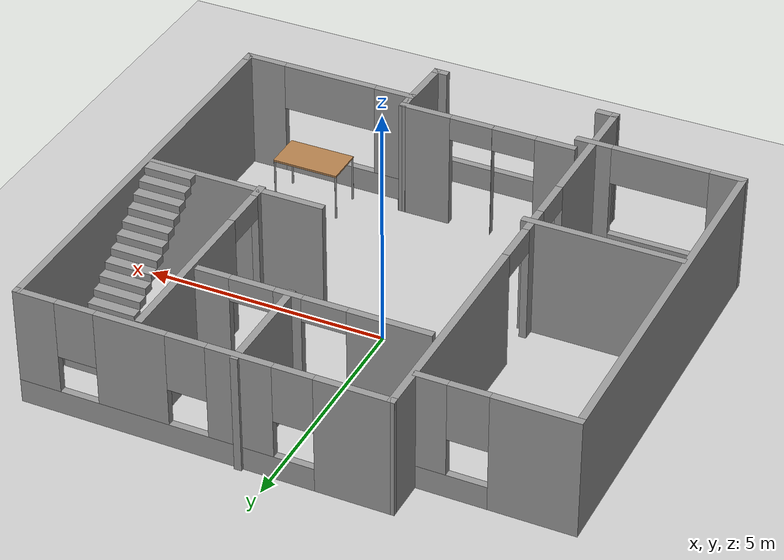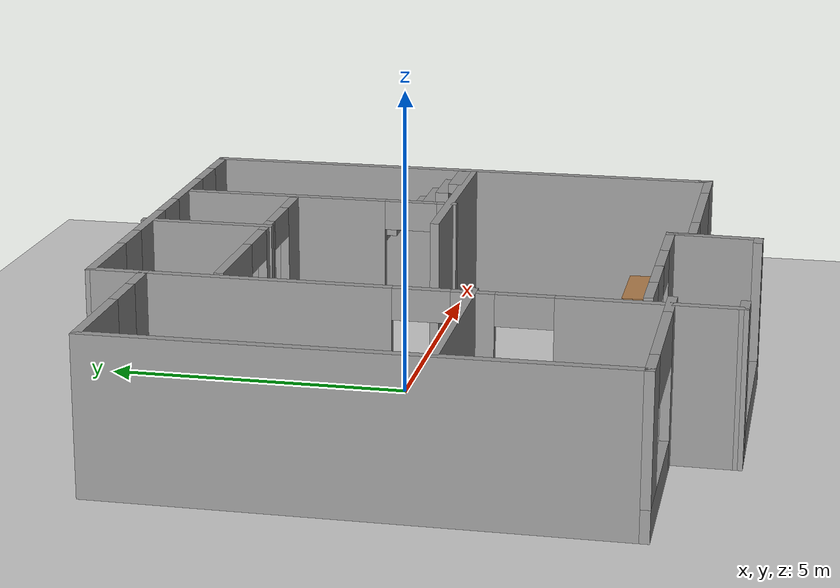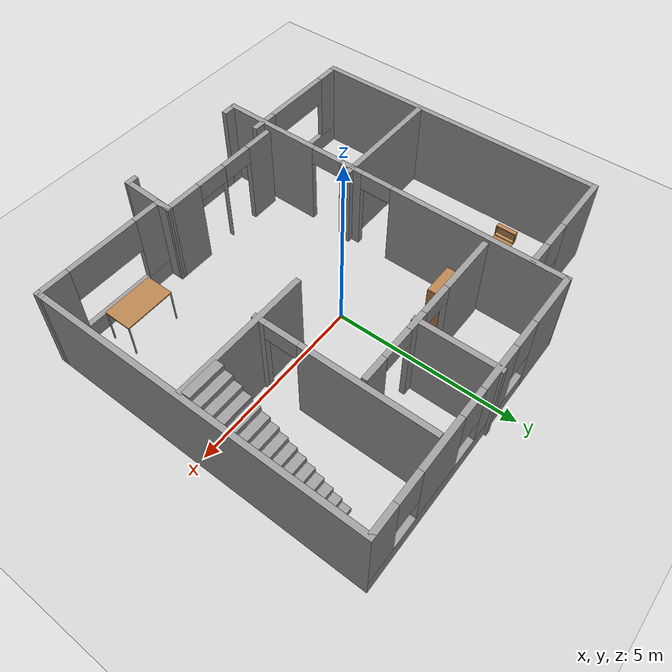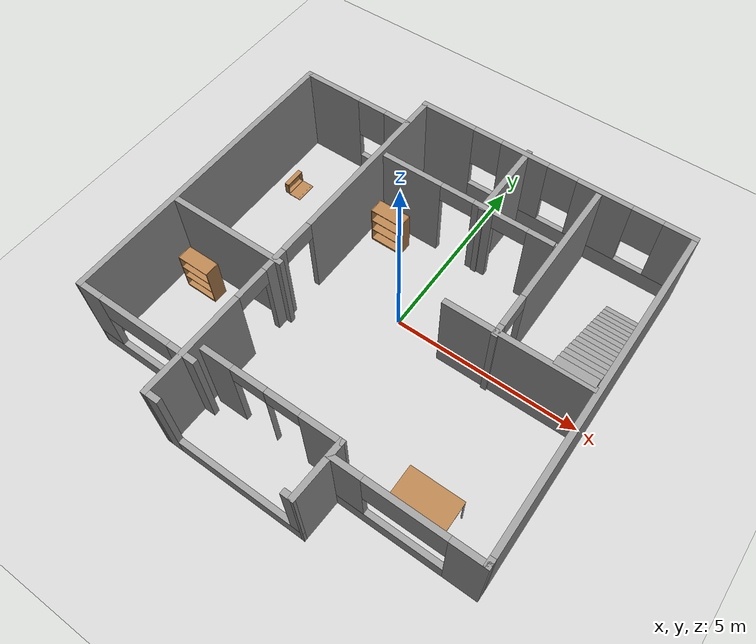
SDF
<sdf version="1.6">
 <world name="default">
  <light name="sun" type="directional">
   <pose>0 0 10 0 -0 0</pose>
   <diffuse>0.8 0.8 0.8 1</diffuse>
   <specular>0.1 0.1 0.1 1</specular>
   <attenuation>
    <range>1000</range>
    <constant>0.9</constant>
    <linear>0.01</linear>
    <quadratic>0.001</quadratic>
   </attenuation>
   <direction>-0.5 0.5 -1</direction>
  </light>
  <model name="ground_plane">
   <static>1</static>
   <link name="link">
    <collision name="collision">
     <geometry><plane><normal>0 0 1</normal><size>100 100</size></plane></geometry>
     <surface><friction><ode><mu>100</mu><mu2>50</mu2></ode></friction></surface>
    </collision>
    <visual name="visual">
     <cast_shadows>0</cast_shadows>
     <geometry><plane><normal>0 0 1</normal><size>100 100</size></plane></geometry>
     <material>
      <script><uri>file://media/materials/scripts/gazebo.material</uri><name>Gazebo/Grey</name></script>
     </material>
    </visual>
   </link>
  </model>
  <gravity>0 0 -9.8</gravity>
  <magnetic_field>6e-06 2.3e-05 -4.2e-05</magnetic_field>
  <atmosphere type="adiabatic"/>
  <physics name="default_physics" default="0" type="ode">
   <max_step_size>0.001</max_step_size>
   <real_time_factor>1</real_time_factor>
   <real_time_update_rate>1000</real_time_update_rate>
  </physics>
  <scene><ambient>0.4 0.4 0.4 1</ambient><background>0.7 0.7 0.7 1</background><shadows>1</shadows></scene>
  <spherical_coordinates>
   <surface_model>EARTH_WGS84</surface_model>
   <latitude_deg>0</latitude_deg>
   <longitude_deg>0</longitude_deg>
   <elevation>0</elevation>
   <heading_deg>0</heading_deg>
  </spherical_coordinates>
  <model name="cad">
   <pose>-0.17175 -0.496482 0 0 -0 0</pose>
   <link name="Stairs_0">
    <visual name="Stairs_0_Visual_0">
     <pose>4.68461 3.68435 0.083333 0 -0 0</pose>
     <geometry><box><size>1 0.233333 0.166667</size></box></geometry>
     <material>
      <script><uri>file://media/materials/scripts/gazebo.material</uri><name>Gazebo/Grey</name></script>
      <ambient>1 1 1 1</ambient>
     </material>
    </visual>
    <collision name="Stairs_0_Collision_0">
     <geometry><box><size>1 0.233333 0.166667</size></box></geometry>
     <pose>4.68461 3.68435 0.083333 0 -0 0</pose>
    </collision>
    <visual name="Stairs_0_Visual_1">
     <pose>4.68461 3.45102 0.25 0 -0 0</pose>
     <geometry><box><size>1 0.233333 0.166667</size></box></geometry>
     <material>
      <script><uri>file://media/materials/scripts/gazebo.material</uri><name>Gazebo/Grey</name></script>
      <ambient>1 1 1 1</ambient>
     </material>
    </visual>
    <collision name="Stairs_0_Collision_1">
     <geometry><box><size>1 0.233333 0.166667</size></box></geometry>
     <pose>4.68461 3.45102 0.25 0 -0 0</pose>
    </collision>
    <visual name="Stairs_0_Visual_2">
     <pose>4.68461 3.21769 0.416667 0 -0 0</pose>
     <geometry><box><size>1 0.233333 0.166667</size></box></geometry>
     <material>
      <script><uri>file://media/materials/scripts/gazebo.material</uri><name>Gazebo/Grey</name></script>
      <ambient>1 1 1 1</ambient>
     </material>
    </visual>
    <collision name="Stairs_0_Collision_2">
     <geometry><box><size>1 0.233333 0.166667</size></box></geometry>
     <pose>4.68461 3.21769 0.416667 0 -0 0</pose>
    </collision>
    <visual name="Stairs_0_Visual_3">
     <pose>4.68461 2.98435 0.583333 0 -0 0</pose>
     <geometry><box><size>1 0.233333 0.166667</size></box></geometry>
     <material>
      <script><uri>file://media/materials/scripts/gazebo.material</uri><name>Gazebo/Grey</name></script>
      <ambient>1 1 1 1</ambient>
     </material>
    </visual>
    <collision name="Stairs_0_Collision_3">
     <geometry><box><size>1 0.233333 0.166667</size></box></geometry>
     <pose>4.68461 2.98435 0.583333 0 -0 0</pose>
    </collision>
    <visual name="Stairs_0_Visual_4">
     <pose>4.68461 2.75102 0.75 0 -0 0</pose>
     <geometry><box><size>1 0.233333 0.166667</size></box></geometry>
     <material>
      <script><uri>file://media/materials/scripts/gazebo.material</uri><name>Gazebo/Grey</name></script>
      <ambient>1 1 1 1</ambient>
     </material>
    </visual>
    <collision name="Stairs_0_Collision_4">
     <geometry><box><size>1 0.233333 0.166667</size></box></geometry>
     <pose>4.68461 2.75102 0.75 0 -0 0</pose>
    </collision>
    <visual name="Stairs_0_Visual_5">
     <pose>4.68461 2.51769 0.916667 0 -0 0</pose>
     <geometry><box><size>1 0.233333 0.166667</size></box></geometry>
     <material>
      <script><uri>file://media/materials/scripts/gazebo.material</uri><name>Gazebo/Grey</name></script>
      <ambient>1 1 1 1</ambient>
     </material>
    </visual>
    <collision name="Stairs_0_Collision_5">
     <geometry><box><size>1 0.233333 0.166667</size></box></geometry>
     <pose>4.68461 2.51769 0.916667 0 -0 0</pose>
    </collision>
    <visual name="Stairs_0_Visual_6">
     <pose>4.68461 2.28435 1.08333 0 -0 0</pose>
     <geometry><box><size>1 0.233333 0.166667</size></box></geometry>
     <material>
      <script><uri>file://media/materials/scripts/gazebo.material</uri><name>Gazebo/Grey</name></script>
      <ambient>1 1 1 1</ambient>
     </material>
    </visual>
    <collision name="Stairs_0_Collision_6">
     <geometry><box><size>1 0.233333 0.166667</size></box></geometry>
     <pose>4.68461 2.28435 1.08333 0 -0 0</pose>
    </collision>
    <visual name="Stairs_0_Visual_7">
     <pose>4.68461 2.05102 1.25 0 -0 0</pose>
     <geometry><box><size>1 0.233333 0.166667</size></box></geometry>
     <material>
      <script><uri>file://media/materials/scripts/gazebo.material</uri><name>Gazebo/Grey</name></script>
      <ambient>1 1 1 1</ambient>
     </material>
    </visual>
    <collision name="Stairs_0_Collision_7">
     <geometry><box><size>1 0.233333 0.166667</size></box></geometry>
     <pose>4.68461 2.05102 1.25 0 -0 0</pose>
    </collision>
    <visual name="Stairs_0_Visual_8">
     <pose>4.68461 1.81769 1.41667 0 -0 0</pose>
     <geometry><box><size>1 0.233333 0.166667</size></box></geometry>
     <material>
      <script><uri>file://media/materials/scripts/gazebo.material</uri><name>Gazebo/Grey</name></script>
      <ambient>1 1 1 1</ambient>
     </material>
    </visual>
    <collision name="Stairs_0_Collision_8">
     <geometry><box><size>1 0.233333 0.166667</size></box></geometry>
     <pose>4.68461 1.81769 1.41667 0 -0 0</pose>
    </collision>
    <visual name="Stairs_0_Visual_9">
     <pose>4.68461 1.58435 1.58333 0 -0 0</pose>
     <geometry><box><size>1 0.233333 0.166667</size></box></geometry>
     <material>
      <script><uri>file://media/materials/scripts/gazebo.material</uri><name>Gazebo/Grey</name></script>
      <ambient>1 1 1 1</ambient>
     </material>
    </visual>
    <collision name="Stairs_0_Collision_9">
     <geometry><box><size>1 0.233333 0.166667</size></box></geometry>
     <pose>4.68461 1.58435 1.58333 0 -0 0</pose>
    </collision>
    <visual name="Stairs_0_Visual_10">
     <pose>4.68461 1.35102 1.75 0 -0 0</pose>
     <geometry><box><size>1 0.233333 0.166667</size></box></geometry>
     <material>
      <script><uri>file://media/materials/scripts/gazebo.material</uri><name>Gazebo/Grey</name></script>
      <ambient>1 1 1 1</ambient>
     </material>
    </visual>
    <collision name="Stairs_0_Collision_10">
     <geometry><box><size>1 0.233333 0.166667</size></box></geometry>
     <pose>4.68461 1.35102 1.75 0 -0 0</pose>
    </collision>
    <visual name="Stairs_0_Visual_11">
     <pose>4.68461 1.11769 1.91667 0 -0 0</pose>
     <geometry><box><size>1 0.233333 0.166667</size></box></geometry>
     <material>
      <script><uri>file://media/materials/scripts/gazebo.material</uri><name>Gazebo/Grey</name></script>
      <ambient>1 1 1 1</ambient>
     </material>
    </visual>
    <collision name="Stairs_0_Collision_11">
     <geometry><box><size>1 0.233333 0.166667</size></box></geometry>
     <pose>4.68461 1.11769 1.91667 0 -0 0</pose>
    </collision>
    <visual name="Stairs_0_Visual_12">
     <pose>4.68461 0.884354 2.08333 0 -0 0</pose>
     <geometry><box><size>1 0.233333 0.166667</size></box></geometry>
     <material>
      <script><uri>file://media/materials/scripts/gazebo.material</uri><name>Gazebo/Grey</name></script>
      <ambient>1 1 1 1</ambient>
     </material>
    </visual>
    <collision name="Stairs_0_Collision_12">
     <geometry><box><size>1 0.233333 0.166667</size></box></geometry>
     <pose>4.68461 0.884354 2.08333 0 -0 0</pose>
    </collision>
    <visual name="Stairs_0_Visual_13">
     <pose>4.68461 0.651021 2.25 0 -0 0</pose>
     <geometry><box><size>1 0.233333 0.166667</size></box></geometry>
     <material>
      <script><uri>file://media/materials/scripts/gazebo.material</uri><name>Gazebo/Grey</name></script>
      <ambient>1 1 1 1</ambient>
     </material>
    </visual>
    <collision name="Stairs_0_Collision_13">
     <geometry><box><size>1 0.233333 0.166667</size></box></geometry>
     <pose>4.68461 0.651021 2.25 0 -0 0</pose>
    </collision>
    <visual name="Stairs_0_Visual_14">
     <pose>4.68461 0.417687 2.41667 0 -0 0</pose>
     <geometry><box><size>1 0.233333 0.166667</size></box></geometry>
     <material>
      <script><uri>file://media/materials/scripts/gazebo.material</uri><name>Gazebo/Grey</name></script>
      <ambient>1 1 1 1</ambient>
     </material>
    </visual>
    <collision name="Stairs_0_Collision_14">
     <geometry><box><size>1 0.233333 0.166667</size></box></geometry>
     <pose>4.68461 0.417687 2.41667 0 -0 0</pose>
    </collision>
   </link>
   <link name="Wall_1">
    <pose>1.55581 4.98438 0 0 -0 0</pose>
    <visual name="Wall_1_Visual_0">
     <pose>-3.0128 0 1.25 0 -0 0</pose>
     <geometry><box><size>1.56279 0.15 2.5</size></box></geometry>
     <material>
      <script><uri>file://media/materials/scripts/gazebo.material</uri><name>Gazebo/Grey</name></script>
      <ambient>1 1 1 1</ambient>
     </material>
    </visual>
    <collision name="Wall_1_Collision_0">
     <geometry><box><size>1.56279 0.15 2.5</size></box></geometry>
     <pose>-3.0128 0 1.25 0 -0 0</pose>
    </collision>
    <visual name="Wall_1_Visual_1">
     <pose>0.781393 0 0.25 0 -0 0</pose>
     <geometry><box><size>6.02559 0.15 0.5</size></box></geometry>
     <material>
      <script><uri>file://media/materials/scripts/gazebo.material</uri><name>Gazebo/Grey</name></script>
      <ambient>1 1 1 1</ambient>
     </material>
    </visual>
    <collision name="Wall_1_Collision_1">
     <geometry><box><size>6.02559 0.15 0.5</size></box></geometry>
     <pose>0.781393 0 0.25 0 -0 0</pose>
    </collision>
    <visual name="Wall_1_Visual_2">
     <pose>-0.776042 0 1.5 0 -0 0</pose>
     <geometry><box><size>1.31073 0.15 2</size></box></geometry>
     <material>
      <script><uri>file://media/materials/scripts/gazebo.material</uri><name>Gazebo/Grey</name></script>
      <ambient>1 1 1 1</ambient>
     </material>
    </visual>
    <collision name="Wall_1_Collision_2">
     <geometry><box><size>1.31073 0.15 2</size></box></geometry>
     <pose>-0.776042 0 1.5 0 -0 0</pose>
    </collision>
    <visual name="Wall_1_Visual_3">
     <pose>1.40504 0 1.5 0 -0 0</pose>
     <geometry><box><size>1.45144 0.15 2</size></box></geometry>
     <material>
      <script><uri>file://media/materials/scripts/gazebo.material</uri><name>Gazebo/Grey</name></script>
      <ambient>1 1 1 1</ambient>
     </material>
    </visual>
    <collision name="Wall_1_Collision_3">
     <geometry><box><size>1.45144 0.15 2</size></box></geometry>
     <pose>1.40504 0 1.5 0 -0 0</pose>
    </collision>
    <visual name="Wall_1_Visual_4">
     <pose>3.36248 0 1.5 0 -0 0</pose>
     <geometry><box><size>0.863427 0.15 2</size></box></geometry>
     <material>
      <script><uri>file://media/materials/scripts/gazebo.material</uri><name>Gazebo/Grey</name></script>
      <ambient>1 1 1 1</ambient>
     </material>
    </visual>
    <collision name="Wall_1_Collision_4">
     <geometry><box><size>0.863427 0.15 2</size></box></geometry>
     <pose>3.36248 0 1.5 0 -0 0</pose>
    </collision>
    <visual name="Wall_1_Visual_5">
     <pose>-1.8314 0 1.9 0 -0 0</pose>
     <geometry><box><size>0.8 0.15 1.2</size></box></geometry>
     <material>
      <script><uri>file://media/materials/scripts/gazebo.material</uri><name>Gazebo/Grey</name></script>
      <ambient>1 1 1 1</ambient>
     </material>
    </visual>
    <collision name="Wall_1_Collision_5">
     <geometry><box><size>0.8 0.15 1.2</size></box></geometry>
     <pose>-1.8314 0 1.9 0 -0 0</pose>
    </collision>
    <visual name="Wall_1_Visual_6">
     <pose>0.279321 0 1.9 0 -0 0</pose>
     <geometry><box><size>0.8 0.15 1.2</size></box></geometry>
     <material>
      <script><uri>file://media/materials/scripts/gazebo.material</uri><name>Gazebo/Grey</name></script>
      <ambient>1 1 1 1</ambient>
     </material>
    </visual>
    <collision name="Wall_1_Collision_6">
     <geometry><box><size>0.8 0.15 1.2</size></box></geometry>
     <pose>0.279321 0 1.9 0 -0 0</pose>
    </collision>
    <visual name="Wall_1_Visual_7">
     <pose>2.53076 0 1.9 0 -0 0</pose>
     <geometry><box><size>0.8 0.15 1.2</size></box></geometry>
     <material>
      <script><uri>file://media/materials/scripts/gazebo.material</uri><name>Gazebo/Grey</name></script>
      <ambient>1 1 1 1</ambient>
     </material>
    </visual>
    <collision name="Wall_1_Collision_7">
     <geometry><box><size>0.8 0.15 1.2</size></box></geometry>
     <pose>2.53076 0 1.9 0 -0 0</pose>
    </collision>
   </link>
   <link name="Wall_10">
    <pose>-3.725 4.13438 0 0 -0 0</pose>
    <visual name="Wall_10_Visual_0">
     <pose>-0.765305 0 1.25 0 -0 0</pose>
     <geometry><box><size>1.71939 0.15 2.5</size></box></geometry>
     <material>
      <script><uri>file://media/materials/scripts/gazebo.material</uri><name>Gazebo/Grey</name></script>
      <ambient>1 1 1 1</ambient>
     </material>
    </visual>
    <collision name="Wall_10_Collision_0">
     <geometry><box><size>1.71939 0.15 2.5</size></box></geometry>
     <pose>-0.765305 0 1.25 0 -0 0</pose>
    </collision>
    <visual name="Wall_10_Visual_1">
     <pose>0.859695 0 0.25 0 -0 0</pose>
     <geometry><box><size>1.53061 0.15 0.5</size></box></geometry>
     <material>
      <script><uri>file://media/materials/scripts/gazebo.material</uri><name>Gazebo/Grey</name></script>
      <ambient>1 1 1 1</ambient>
     </material>
    </visual>
    <collision name="Wall_10_Collision_1">
     <geometry><box><size>1.53061 0.15 0.5</size></box></geometry>
     <pose>0.859695 0 0.25 0 -0 0</pose>
    </collision>
    <visual name="Wall_10_Visual_2">
     <pose>1.2597 0 1.5 0 -0 0</pose>
     <geometry><box><size>0.73061 0.15 2</size></box></geometry>
     <material>
      <script><uri>file://media/materials/scripts/gazebo.material</uri><name>Gazebo/Grey</name></script>
      <ambient>1 1 1 1</ambient>
     </material>
    </visual>
    <collision name="Wall_10_Collision_2">
     <geometry><box><size>0.73061 0.15 2</size></box></geometry>
     <pose>1.2597 0 1.5 0 -0 0</pose>
    </collision>
    <visual name="Wall_10_Visual_3">
     <pose>0.49439 0 1.9 0 -0 0</pose>
     <geometry><box><size>0.8 0.15 1.2</size></box></geometry>
     <material>
      <script><uri>file://media/materials/scripts/gazebo.material</uri><name>Gazebo/Grey</name></script>
      <ambient>1 1 1 1</ambient>
     </material>
    </visual>
    <collision name="Wall_10_Collision_3">
     <geometry><box><size>0.8 0.15 1.2</size></box></geometry>
     <pose>0.49439 0 1.9 0 -0 0</pose>
    </collision>
   </link>
   <link name="Wall_12">
    <collision name="Wall_12_Collision">
     <geometry><box><size>3.75 0.15 2.5</size></box></geometry>
     <pose>0 0 1.25 0 -0 0</pose>
    </collision>
    <visual name="Wall_12_Visual">
     <pose>0 0 1.25 0 -0 0</pose>
     <geometry><box><size>3.75 0.15 2.5</size></box></geometry>
     <material>
      <script><uri>file://media/materials/scripts/gazebo.material</uri><name>Gazebo/Grey</name></script>
      <ambient>1 1 1 1</ambient>
     </material>
    </visual>
    <pose>3.36389 0.273609 0 0 -0 0</pose>
   </link>
   <link name="Wall_16">
    <pose>0.354436 2.98237 0 0 -0 3.14159</pose>
    <visual name="Wall_16_Visual_0">
     <pose>-2.02295 0 1.25 0 -0 0</pose>
     <geometry><box><size>0.7041 0.15 2.5</size></box></geometry>
     <material>
      <script><uri>file://media/materials/scripts/gazebo.material</uri><name>Gazebo/Grey</name></script>
      <ambient>1 1 1 1</ambient>
     </material>
    </visual>
    <collision name="Wall_16_Collision_0">
     <geometry><box><size>0.7041 0.15 2.5</size></box></geometry>
     <pose>-2.02295 0 1.25 0 -0 0</pose>
    </collision>
    <visual name="Wall_16_Visual_1">
     <pose>-0.489395 0 1.25 0 -0 0</pose>
     <geometry><box><size>0.563011 0.15 2.5</size></box></geometry>
     <material>
      <script><uri>file://media/materials/scripts/gazebo.material</uri><name>Gazebo/Grey</name></script>
      <ambient>1 1 1 1</ambient>
     </material>
    </visual>
    <collision name="Wall_16_Collision_1">
     <geometry><box><size>0.563011 0.15 2.5</size></box></geometry>
     <pose>-0.489395 0 1.25 0 -0 0</pose>
    </collision>
    <visual name="Wall_16_Visual_2">
     <pose>1.53356 0 1.25 0 -0 0</pose>
     <geometry><box><size>1.68289 0.15 2.5</size></box></geometry>
     <material>
      <script><uri>file://media/materials/scripts/gazebo.material</uri><name>Gazebo/Grey</name></script>
      <ambient>1 1 1 1</ambient>
     </material>
    </visual>
    <collision name="Wall_16_Collision_2">
     <geometry><box><size>1.68289 0.15 2.5</size></box></geometry>
     <pose>1.53356 0 1.25 0 -0 0</pose>
    </collision>
    <visual name="Wall_16_Visual_3">
     <pose>-1.2209 0 2.25 0 -0 0</pose>
     <geometry><box><size>0.9 0.15 0.5</size></box></geometry>
     <material>
      <script><uri>file://media/materials/scripts/gazebo.material</uri><name>Gazebo/Grey</name></script>
      <ambient>1 1 1 1</ambient>
     </material>
    </visual>
    <collision name="Wall_16_Collision_3">
     <geometry><box><size>0.9 0.15 0.5</size></box></geometry>
     <pose>-1.2209 0 2.25 0 -0 0</pose>
    </collision>
    <visual name="Wall_16_Visual_4">
     <pose>0.242111 0 2.25 0 -0 0</pose>
     <geometry><box><size>0.9 0.15 0.5</size></box></geometry>
     <material>
      <script><uri>file://media/materials/scripts/gazebo.material</uri><name>Gazebo/Grey</name></script>
      <ambient>1 1 1 1</ambient>
     </material>
    </visual>
    <collision name="Wall_16_Collision_4">
     <geometry><box><size>0.9 0.15 0.5</size></box></geometry>
     <pose>0.242111 0 2.25 0 -0 0</pose>
    </collision>
   </link>
   <link name="Wall_18">
    <collision name="Wall_18_Collision">
     <geometry><box><size>2.25 0.15 2.5</size></box></geometry>
     <pose>0 0 1.25 0 -0 0</pose>
    </collision>
    <visual name="Wall_18_Visual">
     <pose>0 0 1.25 0 -0 0</pose>
     <geometry><box><size>2.25 0.15 2.5</size></box></geometry>
     <material>
      <script><uri>file://media/materials/scripts/gazebo.material</uri><name>Gazebo/Grey</name></script>
      <ambient>1 1 1 1</ambient>
     </material>
    </visual>
    <pose>0.82514 3.9972 0 0 -0 1.5708</pose>
   </link>
   <link name="Wall_2">
    <collision name="Wall_2_Collision">
     <geometry><box><size>9 0.15 2.5</size></box></geometry>
     <pose>0 0 1.25 0 -0 0</pose>
    </collision>
    <visual name="Wall_2_Visual">
     <pose>0 0 1.25 0 -0 0</pose>
     <geometry><box><size>9 0.15 2.5</size></box></geometry>
     <material>
      <script><uri>file://media/materials/scripts/gazebo.material</uri><name>Gazebo/Grey</name></script>
      <ambient>1 1 1 1</ambient>
     </material>
    </visual>
    <pose>5.275 0.559375 0 0 0 -1.5708</pose>
   </link>
   <link name="Wall_20">
    <collision name="Wall_20_Collision">
     <geometry><box><size>3.25 0.15 2.5</size></box></geometry>
     <pose>0 0 1.25 0 -0 0</pose>
    </collision>
    <visual name="Wall_20_Visual">
     <pose>0 0 1.25 0 -0 0</pose>
     <geometry><box><size>3.25 0.15 2.5</size></box></geometry>
     <material>
      <script><uri>file://media/materials/scripts/gazebo.material</uri><name>Gazebo/Grey</name></script>
      <ambient>1 1 1 1</ambient>
     </material>
    </visual>
    <pose>-3.61821 -0.992826 0 0 -0 3.14159</pose>
   </link>
   <link name="Wall_27">
    <pose>-0.310412 -5.04409 0 0 -0 0</pose>
    <visual name="Wall_27_Visual_0">
     <pose>-1.765 0 1.25 0 -0 0</pose>
     <geometry><box><size>0.469997 0.15 2.5</size></box></geometry>
     <material>
      <script><uri>file://media/materials/scripts/gazebo.material</uri><name>Gazebo/Grey</name></script>
      <ambient>1 1 1 1</ambient>
     </material>
    </visual>
    <collision name="Wall_27_Collision_0">
     <geometry><box><size>0.469997 0.15 2.5</size></box></geometry>
     <pose>-1.765 0 1.25 0 -0 0</pose>
    </collision>
    <visual name="Wall_27_Visual_1">
     <pose>0.234998 0 0.25 0 -0 0</pose>
     <geometry><box><size>3.53 0.15 0.5</size></box></geometry>
     <material>
      <script><uri>file://media/materials/scripts/gazebo.material</uri><name>Gazebo/Grey</name></script>
      <ambient>1 1 1 1</ambient>
     </material>
    </visual>
    <collision name="Wall_27_Collision_1">
     <geometry><box><size>3.53 0.15 0.5</size></box></geometry>
     <pose>0.234998 0 0.25 0 -0 0</pose>
    </collision>
    <visual name="Wall_27_Visual_2">
     <pose>1.835 0 1.5 0 -0 0</pose>
     <geometry><box><size>0.330003 0.15 2</size></box></geometry>
     <material>
      <script><uri>file://media/materials/scripts/gazebo.material</uri><name>Gazebo/Grey</name></script>
      <ambient>1 1 1 1</ambient>
     </material>
    </visual>
    <collision name="Wall_27_Collision_2">
     <geometry><box><size>0.330003 0.15 2</size></box></geometry>
     <pose>1.835 0 1.5 0 -0 0</pose>
    </collision>
   </link>
   <link name="Wall_28">
    <collision name="Wall_28_Collision">
     <geometry><box><size>1.57975 0.15 2.5</size></box></geometry>
     <pose>0 0 1.25 0 -0 0</pose>
    </collision>
    <visual name="Wall_28_Visual">
     <pose>0 0 1.25 0 -0 0</pose>
     <geometry><box><size>1.57975 0.15 2.5</size></box></geometry>
     <material>
      <script><uri>file://media/materials/scripts/gazebo.material</uri><name>Gazebo/Grey</name></script>
      <ambient>1 1 1 1</ambient>
     </material>
    </visual>
    <pose>1.64479 -4.32986 0 0 -0 1.52853</pose>
   </link>
   <link name="Wall_3">
    <collision name="Wall_3_Collision">
     <geometry><box><size>0.25 0.15 2.5</size></box></geometry>
     <pose>0 0 1.25 0 -0 0</pose>
    </collision>
    <visual name="Wall_3_Visual">
     <pose>0 0 1.25 0 -0 0</pose>
     <geometry><box><size>0.25 0.15 2.5</size></box></geometry>
     <material>
      <script><uri>file://media/materials/scripts/gazebo.material</uri><name>Gazebo/Grey</name></script>
      <ambient>1 1 1 1</ambient>
     </material>
    </visual>
    <pose>5.275 -3.91562 0 0 0 -1.5708</pose>
   </link>
   <link name="Wall_36">
    <pose>2.85215 2.51877 0 0 -0 1.5708</pose>
    <visual name="Wall_36_Visual_0">
     <pose>-2.2034 0 1.25 0 -0 0</pose>
     <geometry><box><size>0.343205 0.15 2.5</size></box></geometry>
     <material>
      <script><uri>file://media/materials/scripts/gazebo.material</uri><name>Gazebo/Grey</name></script>
      <ambient>1 1 1 1</ambient>
     </material>
    </visual>
    <collision name="Wall_36_Collision_0">
     <geometry><box><size>0.343205 0.15 2.5</size></box></geometry>
     <pose>-2.2034 0 1.25 0 -0 0</pose>
    </collision>
    <visual name="Wall_36_Visual_1">
     <pose>0.621603 0 1.25 0 -0 0</pose>
     <geometry><box><size>3.50679 0.15 2.5</size></box></geometry>
     <material>
      <script><uri>file://media/materials/scripts/gazebo.material</uri><name>Gazebo/Grey</name></script>
      <ambient>1 1 1 1</ambient>
     </material>
    </visual>
    <collision name="Wall_36_Collision_1">
     <geometry><box><size>3.50679 0.15 2.5</size></box></geometry>
     <pose>0.621603 0 1.25 0 -0 0</pose>
    </collision>
    <visual name="Wall_36_Visual_2">
     <pose>-1.5818 0 2.25 0 -0 0</pose>
     <geometry><box><size>0.9 0.15 0.5</size></box></geometry>
     <material>
      <script><uri>file://media/materials/scripts/gazebo.material</uri><name>Gazebo/Grey</name></script>
      <ambient>1 1 1 1</ambient>
     </material>
    </visual>
    <collision name="Wall_36_Collision_2">
     <geometry><box><size>0.9 0.15 0.5</size></box></geometry>
     <pose>-1.5818 0 2.25 0 -0 0</pose>
    </collision>
   </link>
   <link name="Wall_38">
    <pose>-2.1994 -0.029859 0 0 -0 1.56361</pose>
    <visual name="Wall_38_Visual_0">
     <pose>-3.65664 0 1.25 0 -0 0</pose>
     <geometry><box><size>2.86545 0.15 2.5</size></box></geometry>
     <material>
      <script><uri>file://media/materials/scripts/gazebo.material</uri><name>Gazebo/Grey</name></script>
      <ambient>1 1 1 1</ambient>
     </material>
    </visual>
    <collision name="Wall_38_Collision_0">
     <geometry><box><size>2.86545 0.15 2.5</size></box></geometry>
     <pose>-3.65664 0 1.25 0 -0 0</pose>
    </collision>
    <visual name="Wall_38_Visual_1">
     <pose>-0.988752 0 1.25 0 -0 0</pose>
     <geometry><box><size>0.670327 0.15 2.5</size></box></geometry>
     <material>
      <script><uri>file://media/materials/scripts/gazebo.material</uri><name>Gazebo/Grey</name></script>
      <ambient>1 1 1 1</ambient>
     </material>
    </visual>
    <collision name="Wall_38_Collision_1">
     <geometry><box><size>0.670327 0.15 2.5</size></box></geometry>
     <pose>-0.988752 0 1.25 0 -0 0</pose>
    </collision>
    <visual name="Wall_38_Visual_2">
     <pose>2.66789 0 1.25 0 -0 0</pose>
     <geometry><box><size>4.84295 0.15 2.5</size></box></geometry>
     <material>
      <script><uri>file://media/materials/scripts/gazebo.material</uri><name>Gazebo/Grey</name></script>
      <ambient>1 1 1 1</ambient>
     </material>
    </visual>
    <collision name="Wall_38_Collision_2">
     <geometry><box><size>4.84295 0.15 2.5</size></box></geometry>
     <pose>2.66789 0 1.25 0 -0 0</pose>
    </collision>
    <visual name="Wall_38_Visual_3">
     <pose>-1.77391 0 2.25 0 -0 0</pose>
     <geometry><box><size>0.9 0.15 0.5</size></box></geometry>
     <material>
      <script><uri>file://media/materials/scripts/gazebo.material</uri><name>Gazebo/Grey</name></script>
      <ambient>1 1 1 1</ambient>
     </material>
    </visual>
    <collision name="Wall_38_Collision_3">
     <geometry><box><size>0.9 0.15 0.5</size></box></geometry>
     <pose>-1.77391 0 2.25 0 -0 0</pose>
    </collision>
    <visual name="Wall_38_Visual_4">
     <pose>-0.203589 0 2.25 0 -0 0</pose>
     <geometry><box><size>0.9 0.15 0.5</size></box></geometry>
     <material>
      <script><uri>file://media/materials/scripts/gazebo.material</uri><name>Gazebo/Grey</name></script>
      <ambient>1 1 1 1</ambient>
     </material>
    </visual>
    <collision name="Wall_38_Collision_4">
     <geometry><box><size>0.9 0.15 0.5</size></box></geometry>
     <pose>-0.203589 0 2.25 0 -0 0</pose>
    </collision>
   </link>
   <link name="Wall_4">
    <pose>3.475 -3.96563 0 0 -0 3.14159</pose>
    <visual name="Wall_4_Visual_0">
     <pose>-1.42668 0 1.25 0 -0 0</pose>
     <geometry><box><size>0.896645 0.15 2.5</size></box></geometry>
     <material>
      <script><uri>file://media/materials/scripts/gazebo.material</uri><name>Gazebo/Grey</name></script>
      <ambient>1 1 1 1</ambient>
     </material>
    </visual>
    <collision name="Wall_4_Collision_0">
     <geometry><box><size>0.896645 0.15 2.5</size></box></geometry>
     <pose>-1.42668 0 1.25 0 -0 0</pose>
    </collision>
    <visual name="Wall_4_Visual_1">
     <pose>0.448323 0 0.25 0 -0 0</pose>
     <geometry><box><size>2.85336 0.15 0.5</size></box></geometry>
     <material>
      <script><uri>file://media/materials/scripts/gazebo.material</uri><name>Gazebo/Grey</name></script>
      <ambient>1 1 1 1</ambient>
     </material>
    </visual>
    <collision name="Wall_4_Collision_1">
     <geometry><box><size>2.85336 0.15 0.5</size></box></geometry>
     <pose>0.448323 0 0.25 0 -0 0</pose>
    </collision>
    <visual name="Wall_4_Visual_2">
     <pose>1.44832 0 1.5 0 -0 0</pose>
     <geometry><box><size>0.853355 0.15 2</size></box></geometry>
     <material>
      <script><uri>file://media/materials/scripts/gazebo.material</uri><name>Gazebo/Grey</name></script>
      <ambient>1 1 1 1</ambient>
     </material>
    </visual>
    <collision name="Wall_4_Collision_2">
     <geometry><box><size>0.853355 0.15 2</size></box></geometry>
     <pose>1.44832 0 1.5 0 -0 0</pose>
    </collision>
    <visual name="Wall_4_Visual_3">
     <pose>0.021645 0 2 0 -0 0</pose>
     <geometry><box><size>2 0.15 1</size></box></geometry>
     <material>
      <script><uri>file://media/materials/scripts/gazebo.material</uri><name>Gazebo/Grey</name></script>
      <ambient>1 1 1 1</ambient>
     </material>
    </visual>
    <collision name="Wall_4_Collision_3">
     <geometry><box><size>2 0.15 1</size></box></geometry>
     <pose>0.021645 0 2 0 -0 0</pose>
    </collision>
   </link>
   <link name="Wall_5">
    <collision name="Wall_5_Collision">
     <geometry><box><size>0.5 0.15 2.5</size></box></geometry>
     <pose>0 0 1.25 0 -0 0</pose>
    </collision>
    <visual name="Wall_5_Visual">
     <pose>0 0 1.25 0 -0 0</pose>
     <geometry><box><size>0.5 0.15 2.5</size></box></geometry>
     <material>
      <script><uri>file://media/materials/scripts/gazebo.material</uri><name>Gazebo/Grey</name></script>
      <ambient>1 1 1 1</ambient>
     </material>
    </visual>
    <pose>1.675 -3.79062 0 0 -0 1.5708</pose>
   </link>
   <link name="Wall_6">
    <pose>-0.125 -3.61563 0 0 -0 3.14159</pose>
    <visual name="Wall_6_Visual_0">
     <pose>-1.32106 0 1.25 0 -0 0</pose>
     <geometry><box><size>1.10787 0.15 2.5</size></box></geometry>
     <material>
      <script><uri>file://media/materials/scripts/gazebo.material</uri><name>Gazebo/Grey</name></script>
      <ambient>1 1 1 1</ambient>
     </material>
    </visual>
    <collision name="Wall_6_Collision_0">
     <geometry><box><size>1.10787 0.15 2.5</size></box></geometry>
     <pose>-1.32106 0 1.25 0 -0 0</pose>
    </collision>
    <visual name="Wall_6_Visual_1">
     <pose>0.135077 0 1.25 0 -0 0</pose>
     <geometry><box><size>0.004407 0.15 2.5</size></box></geometry>
     <material>
      <script><uri>file://media/materials/scripts/gazebo.material</uri><name>Gazebo/Grey</name></script>
      <ambient>1 1 1 1</ambient>
     </material>
    </visual>
    <collision name="Wall_6_Collision_1">
     <geometry><box><size>0.004407 0.15 2.5</size></box></geometry>
     <pose>0.135077 0 1.25 0 -0 0</pose>
    </collision>
    <visual name="Wall_6_Visual_2">
     <pose>1.45614 0 1.25 0 -0 0</pose>
     <geometry><box><size>0.837719 0.15 2.5</size></box></geometry>
     <material>
      <script><uri>file://media/materials/scripts/gazebo.material</uri><name>Gazebo/Grey</name></script>
      <ambient>1 1 1 1</ambient>
     </material>
    </visual>
    <collision name="Wall_6_Collision_2">
     <geometry><box><size>0.837719 0.15 2.5</size></box></geometry>
     <pose>1.45614 0 1.25 0 -0 0</pose>
    </collision>
    <visual name="Wall_6_Visual_3">
     <pose>-0.317126 0 2.25 0 -0 0</pose>
     <geometry><box><size>0.9 0.15 0.5</size></box></geometry>
     <material>
      <script><uri>file://media/materials/scripts/gazebo.material</uri><name>Gazebo/Grey</name></script>
      <ambient>1 1 1 1</ambient>
     </material>
    </visual>
    <collision name="Wall_6_Collision_3">
     <geometry><box><size>0.9 0.15 0.5</size></box></geometry>
     <pose>-0.317126 0 2.25 0 -0 0</pose>
    </collision>
    <visual name="Wall_6_Visual_4">
     <pose>0.587281 0 2.25 0 -0 0</pose>
     <geometry><box><size>0.9 0.15 0.5</size></box></geometry>
     <material>
      <script><uri>file://media/materials/scripts/gazebo.material</uri><name>Gazebo/Grey</name></script>
      <ambient>1 1 1 1</ambient>
     </material>
    </visual>
    <collision name="Wall_6_Collision_4">
     <geometry><box><size>0.9 0.15 0.5</size></box></geometry>
     <pose>0.587281 0 2.25 0 -0 0</pose>
    </collision>
   </link>
   <link name="Wall_8">
    <pose>-3.6 -3.96563 0 0 -0 3.14159</pose>
    <visual name="Wall_8_Visual_0">
     <pose>-1.36621 0 1.25 0 -0 0</pose>
     <geometry><box><size>0.767577 0.15 2.5</size></box></geometry>
     <material>
      <script><uri>file://media/materials/scripts/gazebo.material</uri><name>Gazebo/Grey</name></script>
      <ambient>1 1 1 1</ambient>
     </material>
    </visual>
    <collision name="Wall_8_Collision_0">
     <geometry><box><size>0.767577 0.15 2.5</size></box></geometry>
     <pose>-1.36621 0 1.25 0 -0 0</pose>
    </collision>
    <visual name="Wall_8_Visual_1">
     <pose>0.383788 0 0.25 0 -0 0</pose>
     <geometry><box><size>2.73242 0.15 0.5</size></box></geometry>
     <material>
      <script><uri>file://media/materials/scripts/gazebo.material</uri><name>Gazebo/Grey</name></script>
      <ambient>1 1 1 1</ambient>
     </material>
    </visual>
    <collision name="Wall_8_Collision_1">
     <geometry><box><size>2.73242 0.15 0.5</size></box></geometry>
     <pose>0.383788 0 0.25 0 -0 0</pose>
    </collision>
    <visual name="Wall_8_Visual_2">
     <pose>1.38379 0 1.5 0 -0 0</pose>
     <geometry><box><size>0.732423 0.15 2</size></box></geometry>
     <material>
      <script><uri>file://media/materials/scripts/gazebo.material</uri><name>Gazebo/Grey</name></script>
      <ambient>1 1 1 1</ambient>
     </material>
    </visual>
    <collision name="Wall_8_Collision_2">
     <geometry><box><size>0.732423 0.15 2</size></box></geometry>
     <pose>1.38379 0 1.5 0 -0 0</pose>
    </collision>
    <visual name="Wall_8_Visual_3">
     <pose>0.017577 0 2.1 0 -0 0</pose>
     <geometry><box><size>2 0.15 0.8</size></box></geometry>
     <material>
      <script><uri>file://media/materials/scripts/gazebo.material</uri><name>Gazebo/Grey</name></script>
      <ambient>1 1 1 1</ambient>
     </material>
    </visual>
    <collision name="Wall_8_Collision_3">
     <geometry><box><size>2 0.15 0.8</size></box></geometry>
     <pose>0.017577 0 2.1 0 -0 0</pose>
    </collision>
   </link>
   <link name="Wall_9">
    <collision name="Wall_9_Collision">
     <geometry><box><size>8.25 0.15 2.5</size></box></geometry>
     <pose>0 0 1.25 0 -0 0</pose>
    </collision>
    <visual name="Wall_9_Visual">
     <pose>0 0 1.25 0 -0 0</pose>
     <geometry><box><size>8.25 0.15 2.5</size></box></geometry>
     <material>
      <script><uri>file://media/materials/scripts/gazebo.material</uri><name>Gazebo/Grey</name></script>
      <ambient>1 1 1 1</ambient>
     </material>
    </visual>
    <pose>-5.275 0.084375 0 0 -0 1.5708</pose>
   </link>
   <static>1</static>
  </model>
  <model name="bookshelf">
   <static>1</static>
   <link name="link">
    <inertial><mass>1</mass></inertial>
    <collision name="back">
     <pose>0 0.005 0.6 0 -0 0</pose>
     <geometry><box><size>0.9 0.01 1.2</size></box></geometry>
    </collision>
    <visual name="visual1">
     <pose>0 0.005 0.6 0 -0 0</pose>
     <geometry><box><size>0.9 0.01 1.2</size></box></geometry>
     <material>
      <script><uri>file://media/materials/scripts/gazebo.material</uri><name>Gazebo/Wood</name></script>
     </material>
    </visual>
    <collision name="left_side">
     <pose>0.45 -0.195 0.6 0 -0 0</pose>
     <geometry><box><size>0.02 0.4 1.2</size></box></geometry>
    </collision>
    <visual name="visual2">
     <pose>0.45 -0.195 0.6 0 -0 0</pose>
     <geometry><box><size>0.02 0.4 1.2</size></box></geometry>
     <material>
      <script><uri>file://media/materials/scripts/gazebo.material</uri><name>Gazebo/Wood</name></script>
     </material>
    </visual>
    <collision name="right_side">
     <pose>-0.45 -0.195 0.6 0 -0 0</pose>
     <geometry><box><size>0.02 0.4 1.2</size></box></geometry>
    </collision>
    <visual name="visual3">
     <pose>-0.45 -0.195 0.6 0 -0 0</pose>
     <geometry><box><size>0.02 0.4 1.2</size></box></geometry>
     <material>
      <script><uri>file://media/materials/scripts/gazebo.material</uri><name>Gazebo/Wood</name></script>
     </material>
    </visual>
    <collision name="bottom">
     <pose>0 -0.195 0.03 0 -0 0</pose>
     <geometry><box><size>0.88 0.4 0.06</size></box></geometry>
    </collision>
    <visual name="visual4">
     <pose>0 -0.195 0.03 0 -0 0</pose>
     <geometry><box><size>0.88 0.4 0.06</size></box></geometry>
     <material>
      <script><uri>file://media/materials/scripts/gazebo.material</uri><name>Gazebo/Wood</name></script>
     </material>
    </visual>
    <collision name="top">
     <pose>0 -0.195 1.19 0 -0 0</pose>
     <geometry><box><size>0.88 0.4 0.02</size></box></geometry>
    </collision>
    <visual name="visual5">
     <pose>0 -0.195 1.19 0 -0 0</pose>
     <geometry><box><size>0.88 0.4 0.02</size></box></geometry>
     <material>
      <script><uri>file://media/materials/scripts/gazebo.material</uri><name>Gazebo/Wood</name></script>
     </material>
    </visual>
    <collision name="low_shelf">
     <pose>0 -0.195 0.43 0 -0 0</pose>
     <geometry><box><size>0.88 0.4 0.02</size></box></geometry>
    </collision>
    <visual name="visual6">
     <pose>0 -0.195 0.43 0 -0 0</pose>
     <geometry><box><size>0.88 0.4 0.02</size></box></geometry>
     <material>
      <script><uri>file://media/materials/scripts/gazebo.material</uri><name>Gazebo/Wood</name></script>
     </material>
    </visual>
    <collision name="high_shelf">
     <pose>0 -0.195 0.8 0 -0 0</pose>
     <geometry><box><size>0.88 0.4 0.02</size></box></geometry>
    </collision>
    <visual name="visual7">
     <pose>0 -0.195 0.8 0 -0 0</pose>
     <geometry><box><size>0.88 0.4 0.02</size></box></geometry>
     <material>
      <script><uri>file://media/materials/scripts/gazebo.material</uri><name>Gazebo/Wood</name></script>
     </material>
    </visual>
   </link>
   <pose>-1.60779 2.09111 0 0 -0 0</pose>
  </model>
  <model name="bookshelf_0">
   <static>1</static>
   <link name="link">
    <inertial><mass>1</mass></inertial>
    <collision name="back">
     <pose>0 0.005 0.6 0 -0 0</pose>
     <geometry><box><size>0.9 0.01 1.2</size></box></geometry>
    </collision>
    <visual name="visual1">
     <pose>0 0.005 0.6 0 -0 0</pose>
     <geometry><box><size>0.9 0.01 1.2</size></box></geometry>
     <material>
      <script><uri>file://media/materials/scripts/gazebo.material</uri><name>Gazebo/Wood</name></script>
     </material>
    </visual>
    <collision name="left_side">
     <pose>0.45 -0.195 0.6 0 -0 0</pose>
     <geometry><box><size>0.02 0.4 1.2</size></box></geometry>
    </collision>
    <visual name="visual2">
     <pose>0.45 -0.195 0.6 0 -0 0</pose>
     <geometry><box><size>0.02 0.4 1.2</size></box></geometry>
     <material>
      <script><uri>file://media/materials/scripts/gazebo.material</uri><name>Gazebo/Wood</name></script>
     </material>
    </visual>
    <collision name="right_side">
     <pose>-0.45 -0.195 0.6 0 -0 0</pose>
     <geometry><box><size>0.02 0.4 1.2</size></box></geometry>
    </collision>
    <visual name="visual3">
     <pose>-0.45 -0.195 0.6 0 -0 0</pose>
     <geometry><box><size>0.02 0.4 1.2</size></box></geometry>
     <material>
      <script><uri>file://media/materials/scripts/gazebo.material</uri><name>Gazebo/Wood</name></script>
     </material>
    </visual>
    <collision name="bottom">
     <pose>0 -0.195 0.03 0 -0 0</pose>
     <geometry><box><size>0.88 0.4 0.06</size></box></geometry>
    </collision>
    <visual name="visual4">
     <pose>0 -0.195 0.03 0 -0 0</pose>
     <geometry><box><size>0.88 0.4 0.06</size></box></geometry>
     <material>
      <script><uri>file://media/materials/scripts/gazebo.material</uri><name>Gazebo/Wood</name></script>
     </material>
    </visual>
    <collision name="top">
     <pose>0 -0.195 1.19 0 -0 0</pose>
     <geometry><box><size>0.88 0.4 0.02</size></box></geometry>
    </collision>
    <visual name="visual5">
     <pose>0 -0.195 1.19 0 -0 0</pose>
     <geometry><box><size>0.88 0.4 0.02</size></box></geometry>
     <material>
      <script><uri>file://media/materials/scripts/gazebo.material</uri><name>Gazebo/Wood</name></script>
     </material>
    </visual>
    <collision name="low_shelf">
     <pose>0 -0.195 0.43 0 -0 0</pose>
     <geometry><box><size>0.88 0.4 0.02</size></box></geometry>
    </collision>
    <visual name="visual6">
     <pose>0 -0.195 0.43 0 -0 0</pose>
     <geometry><box><size>0.88 0.4 0.02</size></box></geometry>
     <material>
      <script><uri>file://media/materials/scripts/gazebo.material</uri><name>Gazebo/Wood</name></script>
     </material>
    </visual>
    <collision name="high_shelf">
     <pose>0 -0.195 0.8 0 -0 0</pose>
     <geometry><box><size>0.88 0.4 0.02</size></box></geometry>
    </collision>
    <visual name="visual7">
     <pose>0 -0.195 0.8 0 -0 0</pose>
     <geometry><box><size>0.88 0.4 0.02</size></box></geometry>
     <material>
      <script><uri>file://media/materials/scripts/gazebo.material</uri><name>Gazebo/Wood</name></script>
     </material>
    </visual>
   </link>
   <pose>-4.5724 -1.80536 0 0 -0 0</pose>
  </model>
  <model name="table">
   <static>0</static>
   <link name="link">
    <collision name="surface">
     <pose>0 0 1 0 -0 0</pose>
     <geometry><box><size>1.5 0.8 0.03</size></box></geometry>
     <surface><friction><ode><mu>0.6</mu><mu2>0.6</mu2></ode></friction></surface>
    </collision>
    <visual name="visual1">
     <pose>0 0 1 0 -0 0</pose>
     <geometry><box><size>1.4 0.8 0.04</size></box></geometry>
     <material>
      <script><uri>file://media/materials/scripts/gazebo.material</uri><name>Gazebo/Wood</name></script>
     </material>
    </visual>
    <collision name="front_left_leg">
     <pose>0.68 0.38 0.5 0 -0 0</pose>
     <geometry><cylinder><radius>0.02</radius><length>1</length></cylinder></geometry>
    </collision>
    <visual name="front_left_leg">
     <pose>0.68 0.38 0.5 0 -0 0</pose>
     <geometry><cylinder><radius>0.02</radius><length>1</length></cylinder></geometry>
     <material>
      <script><uri>file://media/materials/scripts/gazebo.material</uri><name>Gazebo/Grey</name></script>
     </material>
    </visual>
    <collision name="front_right_leg">
     <pose>0.68 -0.38 0.5 0 -0 0</pose>
     <geometry><cylinder><radius>0.02</radius><length>1</length></cylinder></geometry>
    </collision>
    <visual name="front_right_leg">
     <pose>0.68 -0.38 0.5 0 -0 0</pose>
     <geometry><cylinder><radius>0.02</radius><length>1</length></cylinder></geometry>
     <material>
      <script><uri>file://media/materials/scripts/gazebo.material</uri><name>Gazebo/Grey</name></script>
     </material>
    </visual>
    <collision name="back_right_leg">
     <pose>-0.68 -0.38 0.5 0 -0 0</pose>
     <geometry><cylinder><radius>0.02</radius><length>1</length></cylinder></geometry>
    </collision>
    <visual name="back_right_leg">
     <pose>-0.68 -0.38 0.5 0 -0 0</pose>
     <geometry><cylinder><radius>0.02</radius><length>1</length></cylinder></geometry>
     <material>
      <script><uri>file://media/materials/scripts/gazebo.material</uri><name>Gazebo/Grey</name></script>
     </material>
    </visual>
    <collision name="back_left_leg">
     <pose>-0.68 0.38 0.5 0 -0 0</pose>
     <geometry><cylinder><radius>0.02</radius><length>1</length></cylinder></geometry>
    </collision>
    <visual name="back_left_leg">
     <pose>-0.68 0.38 0.5 0 -0 0</pose>
     <geometry><cylinder><radius>0.02</radius><length>1</length></cylinder></geometry>
     <material>
      <script><uri>file://media/materials/scripts/gazebo.material</uri><name>Gazebo/Grey</name></script>
     </material>
    </visual>
    <inertial>
     <inertia><ixx>1</ixx><ixy>0</ixy><ixz>0</ixz><iyy>1</iyy><iyz>0</iyz><izz>1</izz></inertia>
     <mass>1</mass>
    </inertial>
   </link>
   <pose>3.27249 -3.63168 -2e-06 0 -0 0</pose>
  </model>
  <model name="wooden_case">
   <link name="base">
    <pose>0 0 0.024 0 -0 0</pose>
    <inertial>
     <pose>-0.022184 0 0.171592 0 -0 0</pose>
     <mass>3.96264</mass>
     <inertia>
      <ixx>0.213536</ixx>
      <ixy>0</ixy>
      <ixz>0.000779377</ixz>
      <iyy>0.0708943</iyy>
      <iyz>0</iyz>
      <izz>0.154604</izz>
     </inertia>
    </inertial>
    <collision name="collision_back">
     <pose>-0.053975 0 0.1778 0 -0 0</pose>
     <geometry><box><size>0.01905 0.5461 0.3175</size></box></geometry>
     <surface>
      <contact>
       <poissons_ratio>0.347</poissons_ratio>
       <elastic_modulus>8.8e+09</elastic_modulus>
       <ode><kp>100000</kp><kd>100</kd><max_vel>100</max_vel><min_depth>0.001</min_depth></ode>
      </contact>
      <friction>
       <torsional>
        <coefficient>1</coefficient>
        <use_patch_radius>0</use_patch_radius>
        <surface_radius>0.01</surface_radius>
       </torsional>
      </friction>
     </surface>
    </collision>
    <visual name="visual_back">
     <pose>-0.053975 0 0.1778 0 -0 0</pose>
     <geometry><box><size>0.01905 0.5461 0.3175</size></box></geometry>
     <material>
      <script><uri>file://media/materials/scripts/gazebo.material</uri><name>Gazebo/Wood</name></script>
     </material>
    </visual>
    <collision name="collision_bottom">
     <pose>0 0 0.009525 0 -0 0</pose>
     <geometry><box><size>0.127 0.5842 0.01905</size></box></geometry>
     <surface>
      <contact>
       <poissons_ratio>0.347</poissons_ratio>
       <elastic_modulus>8.8e+09</elastic_modulus>
       <ode><kp>100000</kp><kd>100</kd><max_vel>100</max_vel><min_depth>0.001</min_depth></ode>
      </contact>
      <friction>
       <torsional>
        <coefficient>1</coefficient>
        <use_patch_radius>0</use_patch_radius>
        <surface_radius>0.01</surface_radius>
       </torsional>
      </friction>
     </surface>
    </collision>
    <visual name="visual_bottom">
     <pose>0 0 0.009525 0 -0 0</pose>
     <geometry><box><size>0.127 0.5842 0.01905</size></box></geometry>
     <material>
      <script><uri>file://media/materials/scripts/gazebo.material</uri><name>Gazebo/Wood</name></script>
     </material>
    </visual>
    <collision name="collision_top">
     <pose>0 0 0.346075 0 -0 0</pose>
     <geometry><box><size>0.127 0.5842 0.01905</size></box></geometry>
     <surface>
      <contact>
       <poissons_ratio>0.347</poissons_ratio>
       <elastic_modulus>8.8e+09</elastic_modulus>
       <ode><kp>100000</kp><kd>100</kd><max_vel>100</max_vel><min_depth>0.001</min_depth></ode>
      </contact>
      <friction>
       <torsional>
        <coefficient>1</coefficient>
        <use_patch_radius>0</use_patch_radius>
        <surface_radius>0.01</surface_radius>
       </torsional>
      </friction>
     </surface>
    </collision>
    <visual name="visual_top">
     <pose>0 0 0.346075 0 -0 0</pose>
     <geometry><box><size>0.127 0.5842 0.01905</size></box></geometry>
     <material>
      <script><uri>file://media/materials/scripts/gazebo.material</uri><name>Gazebo/Wood</name></script>
     </material>
    </visual>
    <collision name="collision_left">
     <pose>0 -0.282575 0.1778 0 -0 0</pose>
     <geometry><box><size>0.127 0.01905 0.3175</size></box></geometry>
     <surface>
      <contact>
       <poissons_ratio>0.347</poissons_ratio>
       <elastic_modulus>8.8e+09</elastic_modulus>
       <ode><kp>100000</kp><kd>100</kd><max_vel>100</max_vel><min_depth>0.001</min_depth></ode>
      </contact>
      <friction>
       <torsional>
        <coefficient>1</coefficient>
        <use_patch_radius>0</use_patch_radius>
        <surface_radius>0.01</surface_radius>
       </torsional>
      </friction>
     </surface>
    </collision>
    <visual name="visual_left">
     <pose>0 -0.282575 0.1778 0 -0 0</pose>
     <geometry><box><size>0.127 0.01905 0.3175</size></box></geometry>
     <material>
      <script><uri>file://media/materials/scripts/gazebo.material</uri><name>Gazebo/Wood</name></script>
     </material>
    </visual>
    <collision name="collision_right">
     <pose>0 0.282575 0.1778 0 -0 0</pose>
     <geometry><box><size>0.127 0.01905 0.3175</size></box></geometry>
     <surface>
      <contact>
       <poissons_ratio>0.347</poissons_ratio>
       <elastic_modulus>8.8e+09</elastic_modulus>
       <ode><kp>100000</kp><kd>100</kd><max_vel>100</max_vel><min_depth>0.001</min_depth></ode>
      </contact>
      <friction>
       <torsional>
        <coefficient>1</coefficient>
        <use_patch_radius>0</use_patch_radius>
        <surface_radius>0.01</surface_radius>
       </torsional>
      </friction>
     </surface>
    </collision>
    <visual name="visual_right">
     <pose>0 0.282575 0.1778 0 -0 0</pose>
     <geometry><box><size>0.127 0.01905 0.3175</size></box></geometry>
     <material>
      <script><uri>file://media/materials/scripts/gazebo.material</uri><name>Gazebo/Wood</name></script>
     </material>
    </visual>
    <collision name="collision_block_left">
     <pose>0.0095 -0.2151 -0.012 0 -0 0</pose>
     <geometry><box><size>0.108 0.05 0.024</size></box></geometry>
     <surface>
      <contact>
       <poissons_ratio>0.347</poissons_ratio>
       <elastic_modulus>8.8e+09</elastic_modulus>
       <ode><kp>100000</kp><kd>100</kd><max_vel>100</max_vel><min_depth>0.001</min_depth></ode>
      </contact>
      <friction>
       <torsional>
        <coefficient>1</coefficient>
        <use_patch_radius>0</use_patch_radius>
        <surface_radius>0.01</surface_radius>
       </torsional>
      </friction>
     </surface>
    </collision>
    <visual name="visual_block_left">
     <pose>0.0095 -0.2151 -0.012 0 -0 0</pose>
     <geometry><box><size>0.108 0.05 0.024</size></box></geometry>
     <material>
      <script><uri>file://media/materials/scripts/gazebo.material</uri><name>Gazebo/Wood</name></script>
     </material>
    </visual>
    <collision name="collision_block_right">
     <pose>0.0095 0.2151 -0.012 0 -0 0</pose>
     <geometry><box><size>0.108 0.05 0.024</size></box></geometry>
     <surface>
      <contact>
       <poissons_ratio>0.347</poissons_ratio>
       <elastic_modulus>8.8e+09</elastic_modulus>
       <ode><kp>100000</kp><kd>100</kd><max_vel>100</max_vel><min_depth>0.001</min_depth></ode>
      </contact>
      <friction>
       <torsional>
        <coefficient>1</coefficient>
        <use_patch_radius>0</use_patch_radius>
        <surface_radius>0.01</surface_radius>
       </torsional>
      </friction>
     </surface>
    </collision>
    <visual name="visual_block_right">
     <pose>0.0095 0.2151 -0.012 0 -0 0</pose>
     <geometry><box><size>0.108 0.05 0.024</size></box></geometry>
     <material>
      <script><uri>file://media/materials/scripts/gazebo.material</uri><name>Gazebo/Wood</name></script>
     </material>
    </visual>
   </link>
   <link name="lid">
    <pose>0.243775 0 0.009525 0 -0 0</pose>
    <inertial>
     <mass>1.97874</mass>
     <inertia>
      <ixx>0.0563367</ixx>
      <ixy>0</ixy>
      <ixz>0</ixz>
      <iyy>0.020911</iyy>
      <iyz>0</iyz>
      <izz>0.0771281</izz>
     </inertia>
    </inertial>
    <collision name="collision">
     <geometry><box><size>0.3556 0.5842 0.01905</size></box></geometry>
     <surface>
      <contact>
       <poissons_ratio>0.347</poissons_ratio>
       <elastic_modulus>8.8e+09</elastic_modulus>
       <ode><kp>100000</kp><kd>100</kd><max_vel>100</max_vel><min_depth>0.001</min_depth></ode>
      </contact>
      <friction>
       <torsional>
        <coefficient>1</coefficient>
        <use_patch_radius>0</use_patch_radius>
        <surface_radius>0.01</surface_radius>
       </torsional>
      </friction>
     </surface>
    </collision>
    <visual name="visual">
     <geometry><box><size>0.3556 0.5842 0.01905</size></box></geometry>
     <material>
      <script><uri>file://media/materials/scripts/gazebo.material</uri><name>Gazebo/Wood</name></script>
     </material>
    </visual>
    <visual name="tee_nut_1">
     <pose>0.122 -0.216 0 0 -0 0</pose>
     <geometry><cylinder><radius>0.00635</radius><length>0.0192405</length></cylinder></geometry>
     <material>
      <script><uri>file://media/materials/scripts/gazebo.material</uri><name>Gazebo/Grey</name></script>
     </material>
    </visual>
    <visual name="tee_nut_2">
     <pose>0.122 -0.088 0 0 -0 0</pose>
     <geometry><cylinder><radius>0.00635</radius><length>0.0192405</length></cylinder></geometry>
     <material>
      <script><uri>file://media/materials/scripts/gazebo.material</uri><name>Gazebo/Grey</name></script>
     </material>
    </visual>
    <visual name="tee_nut_3">
     <pose>0.122 0.088 0 0 -0 0</pose>
     <geometry><cylinder><radius>0.00635</radius><length>0.0192405</length></cylinder></geometry>
     <material>
      <script><uri>file://media/materials/scripts/gazebo.material</uri><name>Gazebo/Grey</name></script>
     </material>
    </visual>
    <visual name="tee_nut_4">
     <pose>0.122 0.216 0 0 -0 0</pose>
     <geometry><cylinder><radius>0.00635</radius><length>0.0192405</length></cylinder></geometry>
     <material>
      <script><uri>file://media/materials/scripts/gazebo.material</uri><name>Gazebo/Grey</name></script>
     </material>
    </visual>
   </link>
   <joint name="lid_hinge" type="revolute">
    <pose>-0.1778 0 0.01905 0 -0 0</pose>
    <parent>base</parent>
    <child>lid</child>
    <axis>
     <xyz>0 1 0</xyz>
     <limit><upper>0.523599</upper><lower>-1.5708</lower></limit>
     <use_parent_model_frame>0</use_parent_model_frame>
     <dynamics><spring_reference>0</spring_reference><spring_stiffness>0</spring_stiffness></dynamics>
    </axis>
   </joint>
   <pose>-4.87995 1.90538 -0.001057 0 -0.000429 0</pose>
  </model>
 </world>
</sdf>
